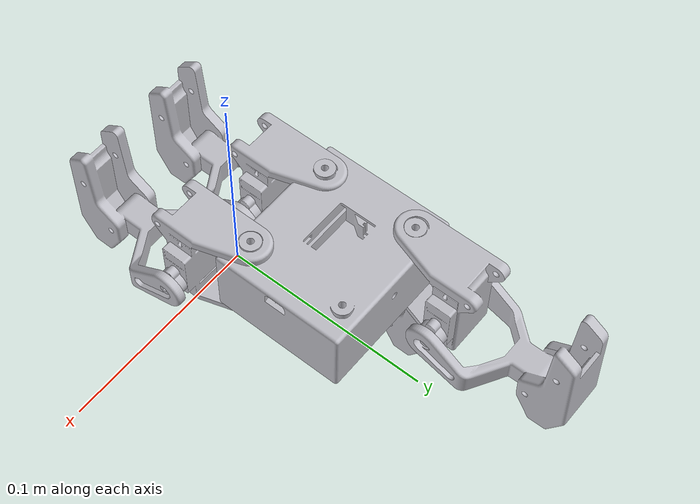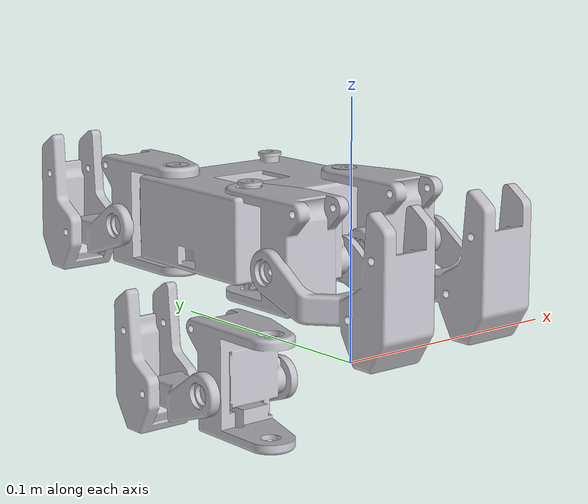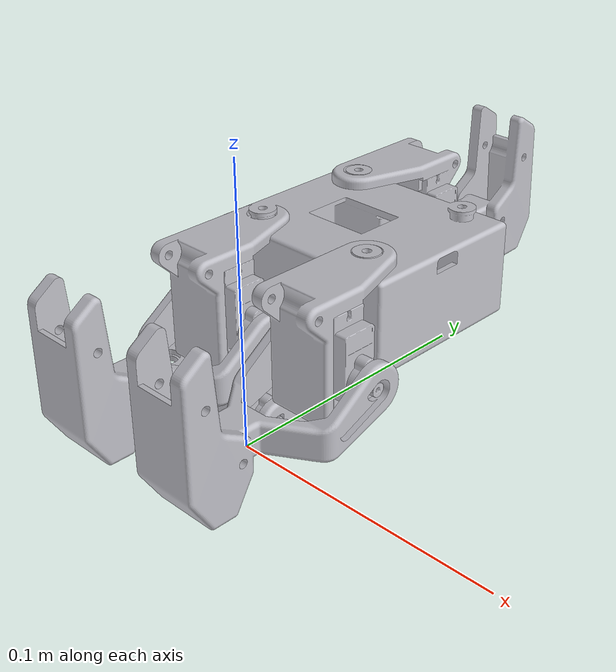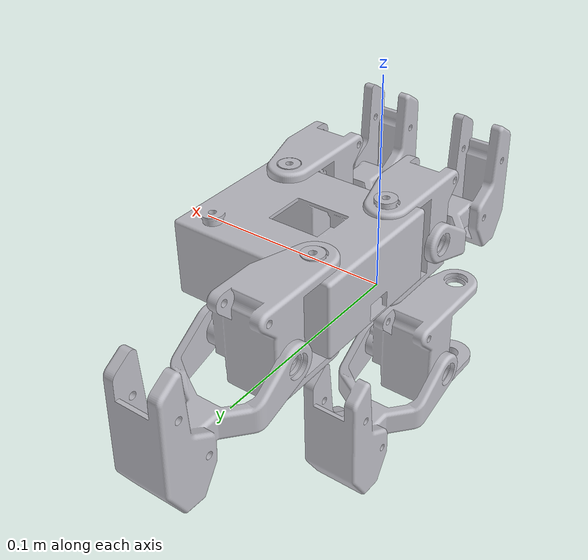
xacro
<?xml version="1.0" ?>
<robot name="robot" xmlns:xacro="http://www.ros.org/wiki/xacro">

<xacro:include filename="$(find robot_description)/urdf/materials.xacro" />
<xacro:include filename="$(find robot_description)/urdf/robot.trans" />
<xacro:include filename="$(find robot_description)/urdf/robot.gazebo" />
<link name="base_link">
  <inertial>
    <origin xyz="-1.6265666862284805e-08 0.05976697397055426 -0.04942827982427058" rpy="0 0 0"/>
    <mass value="0.518464779897647"/>
    <inertia ixx="0.000321" iyy="0.000526" izz="0.000317" ixy="0.0" iyz="0.0" ixz="0.0"/>
  </inertial>
  <visual>
    <origin xyz="0 0 0" rpy="0 0 0"/>
    <geometry>
      <mesh filename="file://$(find robot_description)/meshes/base_link.stl" scale="0.001 0.001 0.001"/>
    </geometry>
    <material name="silver"/>
  </visual>
  <collision>
    <origin xyz="0 0 0" rpy="0 0 0"/>
    <geometry>
      <mesh filename="file://$(find robot_description)/meshes/base_link.stl" scale="0.001 0.001 0.001"/>
    </geometry>
  </collision>
</link>

<link name="left_first_leg_1_1">
  <inertial>
    <origin xyz="-0.016182561377615784 -0.016970091205450906 -0.07108098878633642" rpy="0 0 0"/>
    <mass value="0.1545441044059475"/>
    <inertia ixx="3.9e-05" iyy="2.3e-05" izz="4.1e-05" ixy="-0.0" iyz="1e-06" ixz="-2e-06"/>
  </inertial>
  <visual>
    <origin xyz="-0.062314 -0.07768 -0.049442" rpy="0 0 0"/>
    <geometry>
      <mesh filename="file://$(find robot_description)/meshes/left_first_leg_1_1.stl" scale="0.001 0.001 0.001"/>
    </geometry>
    <material name="silver"/>
  </visual>
  <collision>
    <origin xyz="-0.062314 -0.07768 -0.049442" rpy="0 0 0"/>
    <geometry>
      <mesh filename="file://$(find robot_description)/meshes/left_first_leg_1_1.stl" scale="0.001 0.001 0.001"/>
    </geometry>
  </collision>
</link>

<link name="left_first_lower_link_1_1">
  <inertial>
    <origin xyz="0.013597082230640711 -0.05545010183575793 -0.0969045504066111" rpy="0 0 0"/>
    <mass value="0.13951791871265154"/>
    <inertia ixx="3.5e-05" iyy="6.1e-05" izz="6.5e-05" ixy="-2e-06" iyz="-0.0" ixz="4e-06"/>
  </inertial>
  <visual>
    <origin xyz="-0.076606 -0.104572 -0.074942" rpy="0 0 0"/>
    <geometry>
      <mesh filename="file://$(find robot_description)/meshes/left_first_lower_link_1_1.stl" scale="0.001 0.001 0.001"/>
    </geometry>
    <material name="silver"/>
  </visual>
  <collision>
    <origin xyz="-0.076606 -0.104572 -0.074942" rpy="0 0 0"/>
    <geometry>
      <mesh filename="file://$(find robot_description)/meshes/left_first_lower_link_1_1.stl" scale="0.001 0.001 0.001"/>
    </geometry>
  </collision>
</link>

<link name="left_second_leg_1_1">
  <inertial>
    <origin xyz="-0.016182561377615846 0.03002990879454919 -0.1180808757276001" rpy="0 0 0"/>
    <mass value="0.15454410440594624"/>
    <inertia ixx="3.9e-05" iyy="2.3e-05" izz="4.1e-05" ixy="-0.0" iyz="1e-06" ixz="-2e-06"/>
  </inertial>
  <visual>
    <origin xyz="-0.062314 -0.03068 -0.049442" rpy="0 0 0"/>
    <geometry>
      <mesh filename="file://$(find robot_description)/meshes/left_second_leg_1_1.stl" scale="0.001 0.001 0.001"/>
    </geometry>
    <material name="silver"/>
  </visual>
  <collision>
    <origin xyz="-0.062314 -0.03068 -0.049442" rpy="0 0 0"/>
    <geometry>
      <mesh filename="file://$(find robot_description)/meshes/left_second_leg_1_1.stl" scale="0.001 0.001 0.001"/>
    </geometry>
  </collision>
</link>

<link name="right_first_leg_1_1">
  <inertial>
    <origin xyz="-0.10775046236804242 -0.01697034733389345 -0.024950111229656166" rpy="0 0 0"/>
    <mass value="0.15454599073901315"/>
    <inertia ixx="3.9e-05" iyy="2.2e-05" izz="4.1e-05" ixy="1e-06" iyz="1e-06" ixz="1e-06"/>
  </inertial>
  <visual>
    <origin xyz="-0.062314 -0.07768 -0.003442" rpy="0 0 0"/>
    <geometry>
      <mesh filename="file://$(find robot_description)/meshes/right_first_leg_1_1.stl" scale="0.001 0.001 0.001"/>
    </geometry>
    <material name="silver"/>
  </visual>
  <collision>
    <origin xyz="-0.062314 -0.07768 -0.003442" rpy="0 0 0"/>
    <geometry>
      <mesh filename="file://$(find robot_description)/meshes/right_first_leg_1_1.stl" scale="0.001 0.001 0.001"/>
    </geometry>
  </collision>
</link>

<link name="right_first_lower_link_1_1">
  <inertial>
    <origin xyz="-0.16414174658481429 -0.054807526835211694 -0.0005167109571433057" rpy="0 0 0"/>
    <mass value="0.13938175943738965"/>
    <inertia ixx="3.5e-05" iyy="6.2e-05" izz="6.5e-05" ixy="3e-06" iyz="-0.0" ixz="-3e-06"/>
  </inertial>
  <visual>
    <origin xyz="-0.075906 -0.104203 0.021267" rpy="0 0 0"/>
    <geometry>
      <mesh filename="file://$(find robot_description)/meshes/right_first_lower_link_1_1.stl" scale="0.001 0.001 0.001"/>
    </geometry>
    <material name="silver"/>
  </visual>
  <collision>
    <origin xyz="-0.075906 -0.104203 0.021267" rpy="0 0 0"/>
    <geometry>
      <mesh filename="file://$(find robot_description)/meshes/right_first_lower_link_1_1.stl" scale="0.001 0.001 0.001"/>
    </geometry>
  </collision>
</link>

<link name="right_second_leg_1_1">
  <inertial>
    <origin xyz="-0.10775046236804302 0.027529658752869952 -0.07194999679851391" rpy="0 0 0"/>
    <mass value="0.15454599073900874"/>
    <inertia ixx="3.9e-05" iyy="2.2e-05" izz="4.1e-05" ixy="1e-06" iyz="1e-06" ixz="1e-06"/>
  </inertial>
  <visual>
    <origin xyz="-0.062314 -0.03068 -0.003442" rpy="0 0 0"/>
    <geometry>
      <mesh filename="file://$(find robot_description)/meshes/right_second_leg_1_1.stl" scale="0.001 0.001 0.001"/>
    </geometry>
    <material name="silver"/>
  </visual>
  <collision>
    <origin xyz="-0.062314 -0.03068 -0.003442" rpy="0 0 0"/>
    <geometry>
      <mesh filename="file://$(find robot_description)/meshes/right_second_leg_1_1.stl" scale="0.001 0.001 0.001"/>
    </geometry>
  </collision>
</link>

<link name="right_second_lower_link_1_1">
  <inertial>
    <origin xyz="-0.162843529466699 -0.010814432283774496 -0.048507026761960226" rpy="0 0 0"/>
    <mass value="0.1392383804610426"/>
    <inertia ixx="3.5e-05" iyy="6.1e-05" izz="6.5e-05" ixy="3e-06" iyz="-0.0" ixz="-4e-06"/>
  </inertial>
  <visual>
    <origin xyz="-0.074606 -0.057703 0.020567" rpy="0 0 0"/>
    <geometry>
      <mesh filename="file://$(find robot_description)/meshes/right_second_lower_link_1_1.stl" scale="0.001 0.001 0.001"/>
    </geometry>
    <material name="silver"/>
  </visual>
  <collision>
    <origin xyz="-0.074606 -0.057703 0.020567" rpy="0 0 0"/>
    <geometry>
      <mesh filename="file://$(find robot_description)/meshes/right_second_lower_link_1_1.stl" scale="0.001 0.001 0.001"/>
    </geometry>
  </collision>
</link>

<link name="left_second_lower_link_1_1">
  <inertial>
    <origin xyz="0.013429104850014709 -0.008169807558598814 -0.14334198178588414" rpy="0 0 0"/>
    <mass value="0.1393774257565085"/>
    <inertia ixx="3.6e-05" iyy="6e-05" izz="6.4e-05" ixy="-2e-06" iyz="-0.0" ixz="4e-06"/>
  </inertial>
  <visual>
    <origin xyz="-0.076406 -0.057572 -0.074742" rpy="0 0 0"/>
    <geometry>
      <mesh filename="file://$(find robot_description)/meshes/left_second_lower_link_1_1.stl" scale="0.001 0.001 0.001"/>
    </geometry>
    <material name="silver"/>
  </visual>
  <collision>
    <origin xyz="-0.076406 -0.057572 -0.074742" rpy="0 0 0"/>
    <geometry>
      <mesh filename="file://$(find robot_description)/meshes/left_second_lower_link_1_1.stl" scale="0.001 0.001 0.001"/>
    </geometry>
  </collision>
</link>

<joint name="Revolute 20" type="continuous">
  <origin xyz="0 0 0" rpy="0 0 0"/>
  <parent link="base_link"/>
  <child link="left_first_leg_1_1"/>
  <axis xyz="0.0 -0.0 1.0"/>
</joint>

<joint name="Revolute 21" type="continuous">
  <origin xyz="0.014292 0.026892 0.0255" rpy="0 0 0"/>
  <parent link="left_first_leg_1_1"/>
  <child link="left_first_lower_link_1_1"/>
  <axis xyz="-1.0 0.0 0.0"/>
</joint>

<joint name="Revolute 22" type="continuous">
  <origin xyz="0.062314 0.03068 0.049442" rpy="0 0 0"/>
  <parent link="base_link"/>
  <child link="left_second_leg_1_1"/>
  <axis xyz="0.0 -0.0 1.0"/>
</joint>

<joint name="Revolute 23" type="continuous">
  <origin xyz="0.062314 0.07768 0.003442" rpy="0 0 0"/>
  <parent link="base_link"/>
  <child link="right_first_leg_1_1"/>
  <axis xyz="0.0 -0.0 1.0"/>
</joint>

<joint name="Revolute 24" type="continuous">
  <origin xyz="0.013592 0.026523 -0.024709" rpy="0 0 0"/>
  <parent link="right_first_leg_1_1"/>
  <child link="right_first_lower_link_1_1"/>
  <axis xyz="-1.0 0.0 0.0"/>
</joint>

<joint name="Revolute 25" type="continuous">
  <origin xyz="0.062314 0.03068 0.003442" rpy="0 0 0"/>
  <parent link="base_link"/>
  <child link="right_second_leg_1_1"/>
  <axis xyz="0.0 -0.0 1.0"/>
</joint>

<joint name="Revolute 26" type="continuous">
  <origin xyz="0.012292 0.027023 -0.024009" rpy="0 0 0"/>
  <parent link="right_second_leg_1_1"/>
  <child link="right_second_lower_link_1_1"/>
  <axis xyz="-1.0 0.0 0.0"/>
</joint>

<joint name="Revolute 27" type="continuous">
  <origin xyz="0.014092 0.026892 0.0253" rpy="0 0 0"/>
  <parent link="left_second_leg_1_1"/>
  <child link="left_second_lower_link_1_1"/>
  <axis xyz="-1.0 0.0 0.0"/>
</joint>

</robot>

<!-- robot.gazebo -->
<robot name="robot" xmlns:xacro="http://www.ros.org/wiki/xacro" >

<xacro:property name="body_color" value="Gazebo/Silver" />

<gazebo>
  <plugin name="control" filename="libgazebo_ros_control.so"/>
</gazebo>
<gazebo reference="base_link">
  <material>${body_color}</material>
  <mu1>0.2</mu1>
  <mu2>0.2</mu2>
  <self_collide>true</self_collide>
  <gravity>true</gravity>
</gazebo>

<gazebo reference="left_first_leg_1_1">
  <material>${body_color}</material>
  <mu1>0.2</mu1>
  <mu2>0.2</mu2>
  <self_collide>true</self_collide>
</gazebo>

<gazebo reference="left_first_lower_link_1_1">
  <material>${body_color}</material>
  <mu1>0.2</mu1>
  <mu2>0.2</mu2>
  <self_collide>true</self_collide>
</gazebo>

<gazebo reference="left_second_leg_1_1">
  <material>${body_color}</material>
  <mu1>0.2</mu1>
  <mu2>0.2</mu2>
  <self_collide>true</self_collide>
</gazebo>

<gazebo reference="right_first_leg_1_1">
  <material>${body_color}</material>
  <mu1>0.2</mu1>
  <mu2>0.2</mu2>
  <self_collide>true</self_collide>
</gazebo>

<gazebo reference="right_first_lower_link_1_1">
  <material>${body_color}</material>
  <mu1>0.2</mu1>
  <mu2>0.2</mu2>
  <self_collide>true</self_collide>
</gazebo>

<gazebo reference="right_second_leg_1_1">
  <material>${body_color}</material>
  <mu1>0.2</mu1>
  <mu2>0.2</mu2>
  <self_collide>true</self_collide>
</gazebo>

<gazebo reference="right_second_lower_link_1_1">
  <material>${body_color}</material>
  <mu1>0.2</mu1>
  <mu2>0.2</mu2>
  <self_collide>true</self_collide>
</gazebo>

<gazebo reference="left_second_lower_link_1_1">
  <material>${body_color}</material>
  <mu1>0.2</mu1>
  <mu2>0.2</mu2>
  <self_collide>true</self_collide>
</gazebo>

</robot>
